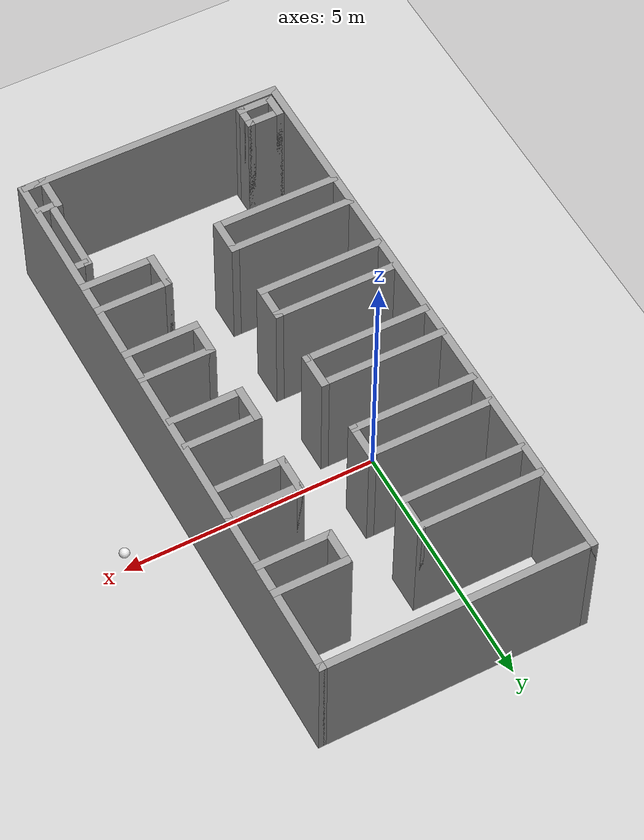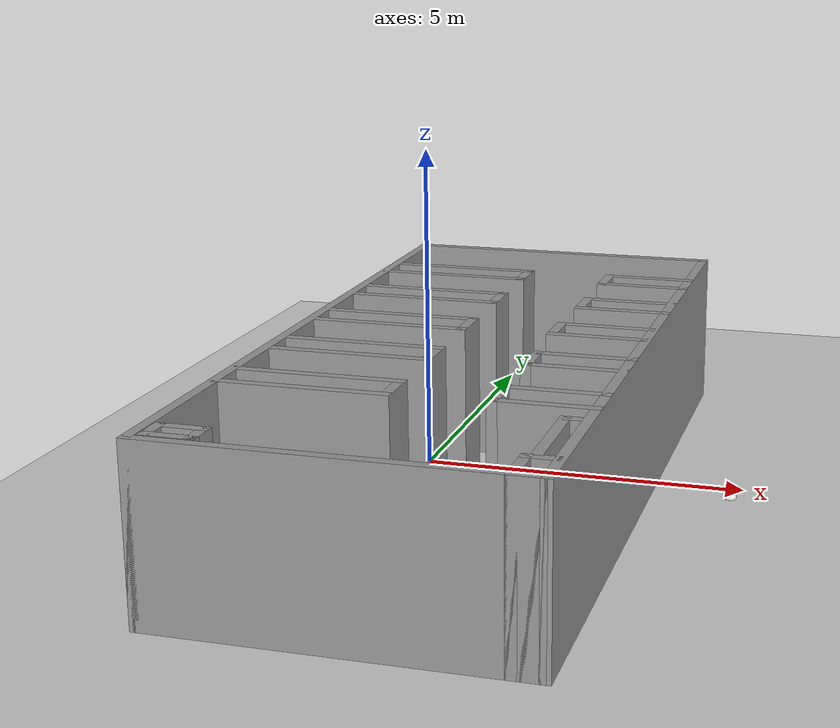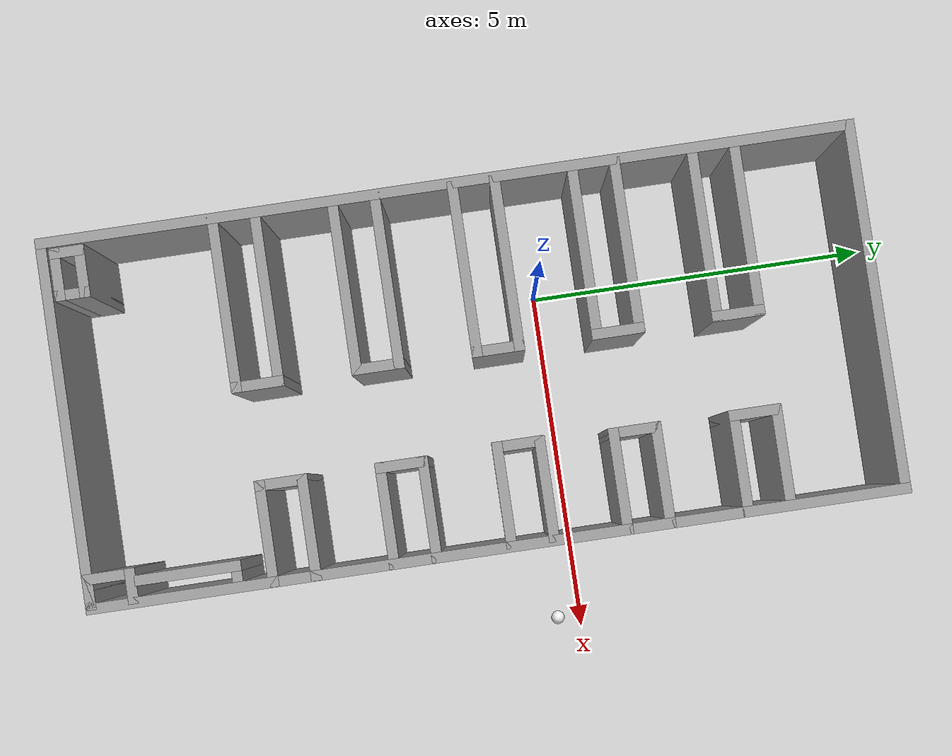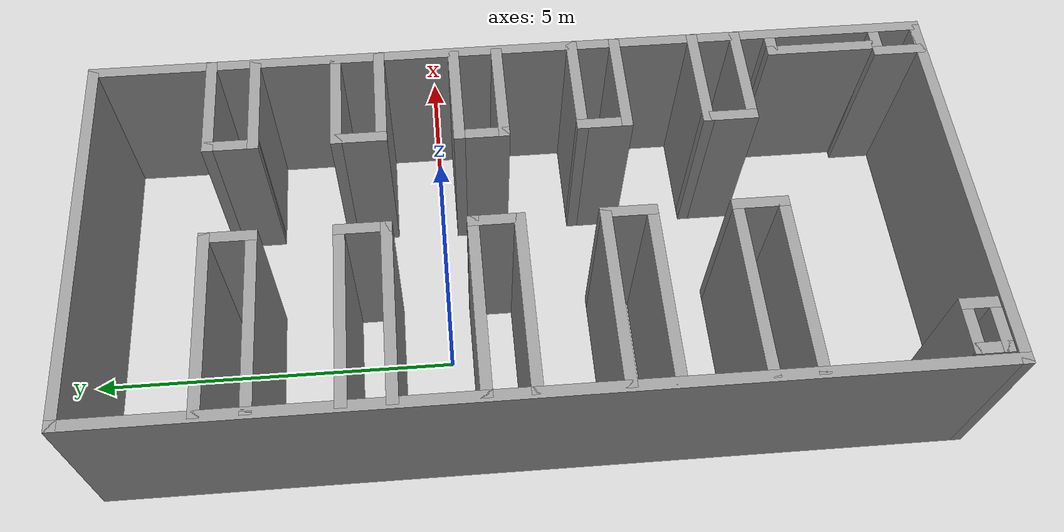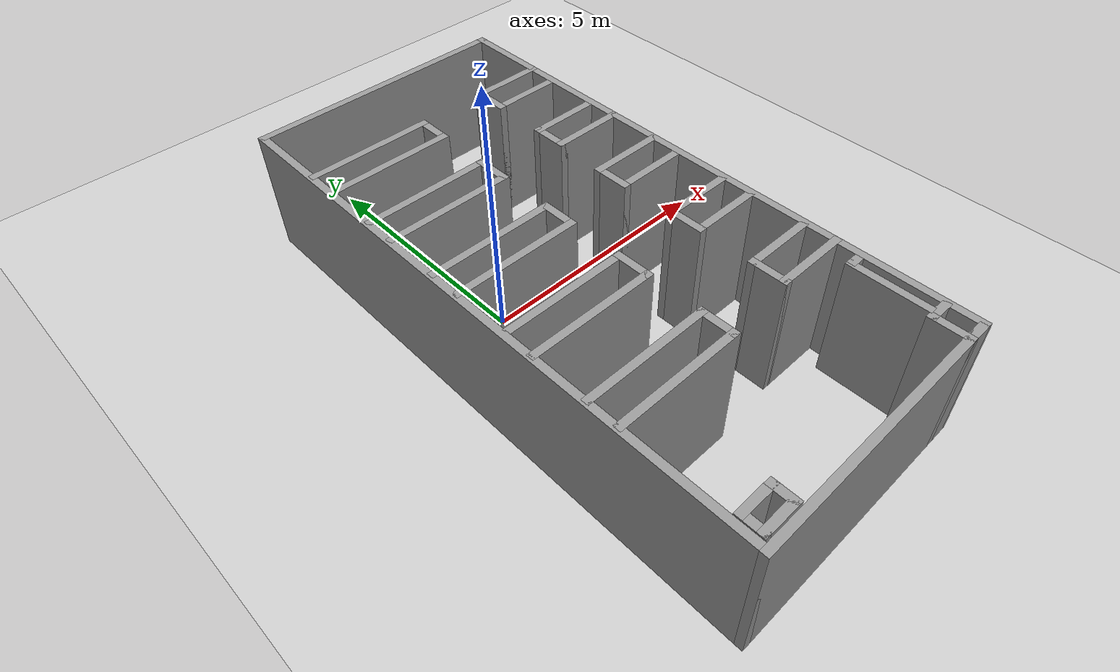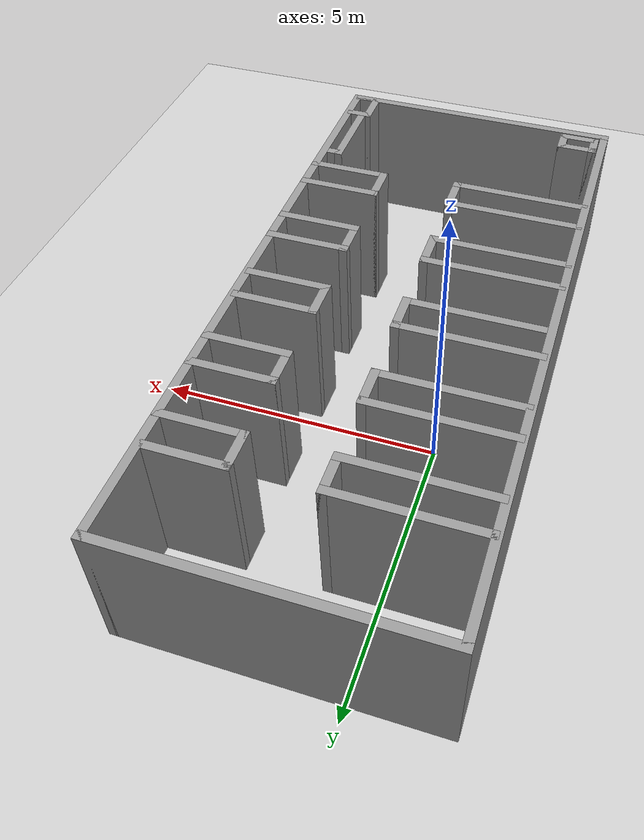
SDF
<sdf version="1.6">
 <world name="default">
  <light name="sun" type="directional">
   <pose>0 0 10 0 -0 0</pose>
   <diffuse>0.8 0.8 0.8 1</diffuse>
   <specular>0.2 0.2 0.2 1</specular>
   <attenuation>
    <range>1000</range>
    <constant>0.9</constant>
    <linear>0.01</linear>
    <quadratic>0.001</quadratic>
   </attenuation>
   <direction>-0.5 0.1 -0.9</direction>
  </light>
  <model name="ground_plane">
   <static>1</static>
   <link name="link">
    <collision name="collision">
     <geometry><plane><normal>0 0 1</normal><size>100 100</size></plane></geometry>
     <surface><friction><ode><mu>100</mu><mu2>50</mu2></ode></friction></surface>
    </collision>
    <visual name="visual">
     <cast_shadows>0</cast_shadows>
     <geometry><plane><normal>0 0 1</normal><size>100 100</size></plane></geometry>
     <material>
      <script><uri>file://media/materials/scripts/gazebo.material</uri><name>Gazebo/Grey</name></script>
     </material>
    </visual>
   </link>
  </model>
  <gravity>0 0 -9.8</gravity>
  <magnetic_field>6e-06 2.3e-05 -4.2e-05</magnetic_field>
  <atmosphere type="adiabatic"/>
  <physics name="default_physics" default="0" type="ode">
   <max_step_size>0.001</max_step_size>
   <real_time_factor>1</real_time_factor>
   <real_time_update_rate>1000</real_time_update_rate>
  </physics>
  <scene><ambient>0.4 0.4 0.4 1</ambient><background>0.7 0.7 0.7 1</background><shadows>1</shadows></scene>
  <audio><device>default</device></audio>
  <spherical_coordinates>
   <surface_model>EARTH_WGS84</surface_model>
   <latitude_deg>0</latitude_deg>
   <longitude_deg>0</longitude_deg>
   <elevation>0</elevation>
   <heading_deg>0</heading_deg>
  </spherical_coordinates>
  <model name="my_ball">
   <link name="link_0">
    <inertial>
     <mass>1</mass>
     <inertia><ixx>0.1</ixx><ixy>0</ixy><ixz>0</ixz><iyy>0.1</iyy><iyz>0</iyz><izz>0.1</izz></inertia>
    </inertial>
    <visual name="visual">
     <geometry><sphere><radius>0.1</radius></sphere></geometry>
     <material>
      <lighting>1</lighting>
      <script><uri>file://media/materials/scripts/gazebo.material</uri><name>Gazebo/White</name></script>
      <shader type="pixel"><normal_map>__default__</normal_map></shader>
      <ambient>1 1 1 1</ambient>
      <diffuse>1 1 1 1</diffuse>
      <specular>1 1 1 1</specular>
      <emissive>1 1 1 1</emissive>
     </material>
    </visual>
    <collision name="collision">
     <geometry><sphere><radius>0.1</radius></sphere></geometry>
     <surface>
      <friction>
       <ode><mu>1</mu><mu2>1</mu2><fdir1>0 0 0</fdir1><slip1>0</slip1><slip2>0</slip2></ode>
       <torsional>
        <coefficient>1</coefficient>
        <patch_radius>0</patch_radius>
        <surface_radius>0</surface_radius>
        <use_patch_radius>1</use_patch_radius>
        <ode><slip>0</slip></ode>
       </torsional>
      </friction>
      <bounce><restitution_coefficient>0</restitution_coefficient><threshold>1e+06</threshold></bounce>
      <contact>
       <collide_without_contact>0</collide_without_contact>
       <collide_without_contact_bitmask>1</collide_without_contact_bitmask>
       <collide_bitmask>1</collide_bitmask>
       <ode>
        <soft_cfm>0</soft_cfm>
        <soft_erp>0.2</soft_erp>
        <kp>1e+13</kp>
        <kd>1</kd>
        <max_vel>0.01</max_vel>
        <min_depth>0</min_depth>
       </ode>
       <bullet>
        <split_impulse>1</split_impulse>
        <split_impulse_penetration_threshold>-0.01</split_impulse_penetration_threshold>
        <soft_cfm>0</soft_cfm>
        <soft_erp>0.2</soft_erp>
        <kp>1e+13</kp>
        <kd>1</kd>
       </bullet>
      </contact>
     </surface>
    </collision>
   </link>
   <static>0</static>
   <pose>4.83519 -0.335584 0 0 -0 0</pose>
  </model>
  <model name="5F">
   <pose>1.02148 -1.06176 0 0 -0 0</pose>
   <link name="Wall_100">
    <collision name="Wall_100_Collision">
     <geometry><box><size>0.75 0.15 2.5</size></box></geometry>
     <pose>0 0 1.25 0 -0 0</pose>
    </collision>
    <visual name="Wall_100_Visual">
     <pose>0 0 1.25 0 -0 0</pose>
     <geometry><box><size>0.75 0.15 2.5</size></box></geometry>
     <material>
      <script><uri>file://media/materials/scripts/gazebo.material</uri><name>Gazebo/Grey</name></script>
      <ambient>1 1 1 1</ambient>
     </material>
     <meta><layer>0</layer></meta>
    </visual>
    <pose>-0.181247 2.0951 0 0 -0 -1.5708</pose>
   </link>
   <link name="Wall_101">
    <collision name="Wall_101_Collision">
     <geometry><box><size>2.5 0.15 2.5</size></box></geometry>
     <pose>0 0 1.25 0 -0 0</pose>
    </collision>
    <visual name="Wall_101_Visual">
     <pose>0 0 1.25 0 -0 0</pose>
     <geometry><box><size>2.5 0.15 2.5</size></box></geometry>
     <material>
      <script><uri>file://media/materials/scripts/gazebo.material</uri><name>Gazebo/Grey</name></script>
      <ambient>1 1 1 1</ambient>
     </material>
     <meta><layer>0</layer></meta>
    </visual>
    <pose>-1.35625 1.7951 0 0 -0 3.14159</pose>
   </link>
   <link name="Wall_104">
    <collision name="Wall_104_Collision">
     <geometry><box><size>2.5 0.15 2.5</size></box></geometry>
     <pose>0 0 1.25 0 -0 0</pose>
    </collision>
    <visual name="Wall_104_Visual">
     <pose>0 0 1.25 0 -0 0</pose>
     <geometry><box><size>2.5 0.15 2.5</size></box></geometry>
     <material>
      <script><uri>file://media/materials/scripts/gazebo.material</uri><name>Gazebo/Grey</name></script>
      <ambient>1 1 1 1</ambient>
     </material>
     <meta><layer>0</layer></meta>
    </visual>
    <pose>-1.35625 0.695096 0 0 -0 3.14159</pose>
   </link>
   <link name="Wall_106">
    <collision name="Wall_106_Collision">
     <geometry><box><size>0.75 0.15 2.5</size></box></geometry>
     <pose>0 0 1.25 0 -0 0</pose>
    </collision>
    <visual name="Wall_106_Visual">
     <pose>0 0 1.25 0 -0 0</pose>
     <geometry><box><size>0.75 0.15 2.5</size></box></geometry>
     <material>
      <script><uri>file://media/materials/scripts/gazebo.material</uri><name>Gazebo/Grey</name></script>
      <ambient>1 1 1 1</ambient>
     </material>
     <meta><layer>0</layer></meta>
    </visual>
    <pose>-0.181247 0.395096 0 0 -0 -1.5708</pose>
   </link>
   <link name="Wall_107">
    <collision name="Wall_107_Collision">
     <geometry><box><size>2.5 0.15 2.5</size></box></geometry>
     <pose>0 0 1.25 0 -0 0</pose>
    </collision>
    <visual name="Wall_107_Visual">
     <pose>0 0 1.25 0 -0 0</pose>
     <geometry><box><size>2.5 0.15 2.5</size></box></geometry>
     <material>
      <script><uri>file://media/materials/scripts/gazebo.material</uri><name>Gazebo/Grey</name></script>
      <ambient>1 1 1 1</ambient>
     </material>
     <meta><layer>0</layer></meta>
    </visual>
    <pose>-1.35625 0.095096 0 0 -0 3.14159</pose>
   </link>
   <link name="Wall_110">
    <collision name="Wall_110_Collision">
     <geometry><box><size>2.5 0.15 2.5</size></box></geometry>
     <pose>0 0 1.25 0 -0 0</pose>
    </collision>
    <visual name="Wall_110_Visual">
     <pose>0 0 1.25 0 -0 0</pose>
     <geometry><box><size>2.5 0.15 2.5</size></box></geometry>
     <material>
      <script><uri>file://media/materials/scripts/gazebo.material</uri><name>Gazebo/Grey</name></script>
      <ambient>1 1 1 1</ambient>
     </material>
     <meta><layer>0</layer></meta>
    </visual>
    <pose>-1.35625 -1.0049 0 0 -0 3.14159</pose>
   </link>
   <link name="Wall_112">
    <collision name="Wall_112_Collision">
     <geometry><box><size>0.75 0.15 2.5</size></box></geometry>
     <pose>0 0 1.25 0 -0 0</pose>
    </collision>
    <visual name="Wall_112_Visual">
     <pose>0 0 1.25 0 -0 0</pose>
     <geometry><box><size>0.75 0.15 2.5</size></box></geometry>
     <material>
      <script><uri>file://media/materials/scripts/gazebo.material</uri><name>Gazebo/Grey</name></script>
      <ambient>1 1 1 1</ambient>
     </material>
     <meta><layer>0</layer></meta>
    </visual>
    <pose>-0.181247 -1.3049 0 0 -0 -1.5708</pose>
   </link>
   <link name="Wall_113">
    <collision name="Wall_113_Collision">
     <geometry><box><size>2.5 0.15 2.5</size></box></geometry>
     <pose>0 0 1.25 0 -0 0</pose>
    </collision>
    <visual name="Wall_113_Visual">
     <pose>0 0 1.25 0 -0 0</pose>
     <geometry><box><size>2.5 0.15 2.5</size></box></geometry>
     <material>
      <script><uri>file://media/materials/scripts/gazebo.material</uri><name>Gazebo/Grey</name></script>
      <ambient>1 1 1 1</ambient>
     </material>
     <meta><layer>0</layer></meta>
    </visual>
    <pose>-1.35625 -1.6049 0 0 -0 3.14159</pose>
   </link>
   <link name="Wall_116">
    <collision name="Wall_116_Collision">
     <geometry><box><size>2.5 0.15 2.5</size></box></geometry>
     <pose>0 0 1.25 0 -0 0</pose>
    </collision>
    <visual name="Wall_116_Visual">
     <pose>0 0 1.25 0 -0 0</pose>
     <geometry><box><size>2.5 0.15 2.5</size></box></geometry>
     <material>
      <script><uri>file://media/materials/scripts/gazebo.material</uri><name>Gazebo/Grey</name></script>
      <ambient>1 1 1 1</ambient>
     </material>
     <meta><layer>0</layer></meta>
    </visual>
    <pose>-1.35625 -2.7049 0 0 -0 3.14159</pose>
   </link>
   <link name="Wall_118">
    <collision name="Wall_118_Collision">
     <geometry><box><size>0.75 0.15 2.5</size></box></geometry>
     <pose>0 0 1.25 0 -0 0</pose>
    </collision>
    <visual name="Wall_118_Visual">
     <pose>0 0 1.25 0 -0 0</pose>
     <geometry><box><size>0.75 0.15 2.5</size></box></geometry>
     <material>
      <script><uri>file://media/materials/scripts/gazebo.material</uri><name>Gazebo/Grey</name></script>
      <ambient>1 1 1 1</ambient>
     </material>
     <meta><layer>0</layer></meta>
    </visual>
    <pose>-0.181247 -3.0049 0 0 -0 -1.5708</pose>
   </link>
   <link name="Wall_119">
    <collision name="Wall_119_Collision">
     <geometry><box><size>2.5 0.15 2.5</size></box></geometry>
     <pose>0 0 1.25 0 -0 0</pose>
    </collision>
    <visual name="Wall_119_Visual">
     <pose>0 0 1.25 0 -0 0</pose>
     <geometry><box><size>2.5 0.15 2.5</size></box></geometry>
     <material>
      <script><uri>file://media/materials/scripts/gazebo.material</uri><name>Gazebo/Grey</name></script>
      <ambient>1 1 1 1</ambient>
     </material>
     <meta><layer>0</layer></meta>
    </visual>
    <pose>-1.35625 -3.3049 0 0 -0 3.14159</pose>
   </link>
   <link name="Wall_122">
    <collision name="Wall_122_Collision">
     <geometry><box><size>1.5 0.15 2.5</size></box></geometry>
     <pose>0 0 1.25 0 -0 0</pose>
    </collision>
    <visual name="Wall_122_Visual">
     <pose>0 0 1.25 0 -0 0</pose>
     <geometry><box><size>1.5 0.15 2.5</size></box></geometry>
     <material>
      <script><uri>file://media/materials/scripts/gazebo.material</uri><name>Gazebo/Grey</name></script>
      <ambient>1 1 1 1</ambient>
     </material>
     <meta><layer>0</layer></meta>
    </visual>
    <pose>1.89975 2.4181 0 0 -0 0</pose>
   </link>
   <link name="Wall_124">
    <collision name="Wall_124_Collision">
     <geometry><box><size>0.75 0.15 2.5</size></box></geometry>
     <pose>0 0 1.25 0 -0 0</pose>
    </collision>
    <visual name="Wall_124_Visual">
     <pose>0 0 1.25 0 -0 0</pose>
     <geometry><box><size>0.75 0.15 2.5</size></box></geometry>
     <material>
      <script><uri>file://media/materials/scripts/gazebo.material</uri><name>Gazebo/Grey</name></script>
      <ambient>1 1 1 1</ambient>
     </material>
     <meta><layer>0</layer></meta>
    </visual>
    <pose>1.22475 2.1181 0 0 -0 -1.5708</pose>
   </link>
   <link name="Wall_125">
    <collision name="Wall_125_Collision">
     <geometry><box><size>1.5 0.15 2.5</size></box></geometry>
     <pose>0 0 1.25 0 -0 0</pose>
    </collision>
    <visual name="Wall_125_Visual">
     <pose>0 0 1.25 0 -0 0</pose>
     <geometry><box><size>1.5 0.15 2.5</size></box></geometry>
     <material>
      <script><uri>file://media/materials/scripts/gazebo.material</uri><name>Gazebo/Grey</name></script>
      <ambient>1 1 1 1</ambient>
     </material>
     <meta><layer>0</layer></meta>
    </visual>
    <pose>1.89975 1.8181 0 0 -0 0</pose>
   </link>
   <link name="Wall_127">
    <collision name="Wall_127_Collision">
     <geometry><box><size>1.5 0.15 2.5</size></box></geometry>
     <pose>0 0 1.25 0 -0 0</pose>
    </collision>
    <visual name="Wall_127_Visual">
     <pose>0 0 1.25 0 -0 0</pose>
     <geometry><box><size>1.5 0.15 2.5</size></box></geometry>
     <material>
      <script><uri>file://media/materials/scripts/gazebo.material</uri><name>Gazebo/Grey</name></script>
      <ambient>1 1 1 1</ambient>
     </material>
     <meta><layer>0</layer></meta>
    </visual>
    <pose>1.85375 0.783096 0 0 -0 3.14159</pose>
   </link>
   <link name="Wall_128">
    <collision name="Wall_128_Collision">
     <geometry><box><size>0.75 0.15 2.5</size></box></geometry>
     <pose>0 0 1.25 0 -0 0</pose>
    </collision>
    <visual name="Wall_128_Visual">
     <pose>0 0 1.25 0 -0 0</pose>
     <geometry><box><size>0.75 0.15 2.5</size></box></geometry>
     <material>
      <script><uri>file://media/materials/scripts/gazebo.material</uri><name>Gazebo/Grey</name></script>
      <ambient>1 1 1 1</ambient>
     </material>
     <meta><layer>0</layer></meta>
    </visual>
    <pose>1.17875 0.483096 0 0 -0 -1.5708</pose>
   </link>
   <link name="Wall_129">
    <collision name="Wall_129_Collision">
     <geometry><box><size>1.5 0.15 2.5</size></box></geometry>
     <pose>0 0 1.25 0 -0 0</pose>
    </collision>
    <visual name="Wall_129_Visual">
     <pose>0 0 1.25 0 -0 0</pose>
     <geometry><box><size>1.5 0.15 2.5</size></box></geometry>
     <material>
      <script><uri>file://media/materials/scripts/gazebo.material</uri><name>Gazebo/Grey</name></script>
      <ambient>1 1 1 1</ambient>
     </material>
     <meta><layer>0</layer></meta>
    </visual>
    <pose>1.85375 0.183096 0 0 -0 0</pose>
   </link>
   <link name="Wall_131">
    <collision name="Wall_131_Collision">
     <geometry><box><size>1.5 0.15 2.5</size></box></geometry>
     <pose>0 0 1.25 0 -0 0</pose>
    </collision>
    <visual name="Wall_131_Visual">
     <pose>0 0 1.25 0 -0 0</pose>
     <geometry><box><size>1.5 0.15 2.5</size></box></geometry>
     <material>
      <script><uri>file://media/materials/scripts/gazebo.material</uri><name>Gazebo/Grey</name></script>
      <ambient>1 1 1 1</ambient>
     </material>
     <meta><layer>0</layer></meta>
    </visual>
    <pose>1.89975 -0.872904 0 0 -0 3.14159</pose>
   </link>
   <link name="Wall_132">
    <collision name="Wall_132_Collision">
     <geometry><box><size>0.75 0.15 2.5</size></box></geometry>
     <pose>0 0 1.25 0 -0 0</pose>
    </collision>
    <visual name="Wall_132_Visual">
     <pose>0 0 1.25 0 -0 0</pose>
     <geometry><box><size>0.75 0.15 2.5</size></box></geometry>
     <material>
      <script><uri>file://media/materials/scripts/gazebo.material</uri><name>Gazebo/Grey</name></script>
      <ambient>1 1 1 1</ambient>
     </material>
     <meta><layer>0</layer></meta>
    </visual>
    <pose>1.22475 -1.1729 0 0 -0 -1.5708</pose>
   </link>
   <link name="Wall_133">
    <collision name="Wall_133_Collision">
     <geometry><box><size>1.5 0.15 2.5</size></box></geometry>
     <pose>0 0 1.25 0 -0 0</pose>
    </collision>
    <visual name="Wall_133_Visual">
     <pose>0 0 1.25 0 -0 0</pose>
     <geometry><box><size>1.5 0.15 2.5</size></box></geometry>
     <material>
      <script><uri>file://media/materials/scripts/gazebo.material</uri><name>Gazebo/Grey</name></script>
      <ambient>1 1 1 1</ambient>
     </material>
     <meta><layer>0</layer></meta>
    </visual>
    <pose>1.89975 -1.4729 0 0 -0 0</pose>
   </link>
   <link name="Wall_136">
    <collision name="Wall_136_Collision">
     <geometry><box><size>1.5 0.15 2.5</size></box></geometry>
     <pose>0 0 1.25 0 -0 0</pose>
    </collision>
    <visual name="Wall_136_Visual">
     <pose>0 0 1.25 0 -0 0</pose>
     <geometry><box><size>1.5 0.15 2.5</size></box></geometry>
     <material>
      <script><uri>file://media/materials/scripts/gazebo.material</uri><name>Gazebo/Grey</name></script>
      <ambient>1 1 1 1</ambient>
     </material>
     <meta><layer>0</layer></meta>
    </visual>
    <pose>1.89975 -2.5729 0 0 -0 0</pose>
   </link>
   <link name="Wall_138">
    <collision name="Wall_138_Collision">
     <geometry><box><size>0.75 0.15 2.5</size></box></geometry>
     <pose>0 0 1.25 0 -0 0</pose>
    </collision>
    <visual name="Wall_138_Visual">
     <pose>0 0 1.25 0 -0 0</pose>
     <geometry><box><size>0.75 0.15 2.5</size></box></geometry>
     <material>
      <script><uri>file://media/materials/scripts/gazebo.material</uri><name>Gazebo/Grey</name></script>
      <ambient>1 1 1 1</ambient>
     </material>
     <meta><layer>0</layer></meta>
    </visual>
    <pose>1.22475 -2.8729 0 0 -0 -1.5708</pose>
   </link>
   <link name="Wall_139">
    <collision name="Wall_139_Collision">
     <geometry><box><size>1.5 0.15 2.5</size></box></geometry>
     <pose>0 0 1.25 0 -0 0</pose>
    </collision>
    <visual name="Wall_139_Visual">
     <pose>0 0 1.25 0 -0 0</pose>
     <geometry><box><size>1.5 0.15 2.5</size></box></geometry>
     <material>
      <script><uri>file://media/materials/scripts/gazebo.material</uri><name>Gazebo/Grey</name></script>
      <ambient>1 1 1 1</ambient>
     </material>
     <meta><layer>0</layer></meta>
    </visual>
    <pose>1.89975 -3.1729 0 0 -0 0</pose>
   </link>
   <link name="Wall_60">
    <collision name="Wall_60_Collision">
     <geometry><box><size>11.62 0.15 2.5</size></box></geometry>
     <pose>0 0 1.25 0 -0 0</pose>
    </collision>
    <visual name="Wall_60_Visual">
     <pose>0 0 1.25 0 -0 0</pose>
     <geometry><box><size>11.62 0.15 2.5</size></box></geometry>
     <material>
      <script><uri>file://media/materials/scripts/gazebo.material</uri><name>Gazebo/Grey</name></script>
      <ambient>1 1 1 1</ambient>
     </material>
     <meta><layer>0</layer></meta>
    </visual>
    <pose>2.58 0 0 0 -0 -1.5708</pose>
   </link>
   <link name="Wall_64">
    <collision name="Wall_64_Collision">
     <geometry><box><size>11.62 0.15 2.5</size></box></geometry>
     <pose>0 0 1.25 0 -0 0</pose>
    </collision>
    <visual name="Wall_64_Visual">
     <pose>0 0 1.25 0 -0 0</pose>
     <geometry><box><size>11.62 0.15 2.5</size></box></geometry>
     <material>
      <script><uri>file://media/materials/scripts/gazebo.material</uri><name>Gazebo/Grey</name></script>
      <ambient>1 1 1 1</ambient>
     </material>
     <meta><layer>0</layer></meta>
    </visual>
    <pose>-2.58 0 0 0 -0 1.5708</pose>
   </link>
   <link name="Wall_66">
    <collision name="Wall_66_Collision">
     <geometry><box><size>5.31 0.15 2.5</size></box></geometry>
     <pose>0 0 1.25 0 -0 0</pose>
    </collision>
    <visual name="Wall_66_Visual">
     <pose>0 0 1.25 0 -0 0</pose>
     <geometry><box><size>5.31 0.15 2.5</size></box></geometry>
     <material>
      <script><uri>file://media/materials/scripts/gazebo.material</uri><name>Gazebo/Grey</name></script>
      <ambient>1 1 1 1</ambient>
     </material>
     <meta><layer>0</layer></meta>
    </visual>
    <pose>0 5.735 0 0 -0 0</pose>
   </link>
   <link name="Wall_68">
    <collision name="Wall_68_Collision">
     <geometry><box><size>0.25 0.15 2.5</size></box></geometry>
     <pose>0 0 1.25 0 -0 0</pose>
    </collision>
    <visual name="Wall_68_Visual">
     <pose>0 0 1.25 0 -0 0</pose>
     <geometry><box><size>0.25 0.15 2.5</size></box></geometry>
     <material>
      <script><uri>file://media/materials/scripts/gazebo.material</uri><name>Gazebo/Grey</name></script>
      <ambient>1 1 1 1</ambient>
     </material>
     <meta><layer>0</layer></meta>
    </visual>
    <pose>2.38166 -3.66005 0 0 -0 0</pose>
   </link>
   <link name="Wall_72">
    <collision name="Wall_72_Collision">
     <geometry><box><size>5.25 0.15 2.5</size></box></geometry>
     <pose>0 0 1.25 0 -0 0</pose>
    </collision>
    <visual name="Wall_72_Visual">
     <pose>0 0 1.25 0 -0 0</pose>
     <geometry><box><size>5.25 0.15 2.5</size></box></geometry>
     <material>
      <script><uri>file://media/materials/scripts/gazebo.material</uri><name>Gazebo/Grey</name></script>
      <ambient>1 1 1 1</ambient>
     </material>
     <meta><layer>0</layer></meta>
    </visual>
    <pose>-0.03 -5.735 0 0 -0 0</pose>
   </link>
   <link name="Wall_73">
    <collision name="Wall_73_Collision">
     <geometry><box><size>0.5 0.15 2.5</size></box></geometry>
     <pose>0 0 1.25 0 -0 0</pose>
    </collision>
    <visual name="Wall_73_Visual">
     <pose>0 0 1.25 0 -0 0</pose>
     <geometry><box><size>0.5 0.15 2.5</size></box></geometry>
     <material>
      <script><uri>file://media/materials/scripts/gazebo.material</uri><name>Gazebo/Grey</name></script>
      <ambient>1 1 1 1</ambient>
     </material>
     <meta><layer>0</layer></meta>
    </visual>
    <pose>2.345 -5.735 0 0 -0 3.14159</pose>
   </link>
   <link name="Wall_74">
    <collision name="Wall_74_Collision">
     <geometry><box><size>0.75 0.15 2.5</size></box></geometry>
     <pose>0 0 1.25 0 -0 0</pose>
    </collision>
    <visual name="Wall_74_Visual">
     <pose>0 0 1.25 0 -0 0</pose>
     <geometry><box><size>0.75 0.15 2.5</size></box></geometry>
     <material>
      <script><uri>file://media/materials/scripts/gazebo.material</uri><name>Gazebo/Grey</name></script>
      <ambient>1 1 1 1</ambient>
     </material>
     <meta><layer>0</layer></meta>
    </visual>
    <pose>2.17 -5.435 0 0 -0 1.5708</pose>
   </link>
   <link name="Wall_75">
    <collision name="Wall_75_Collision">
     <geometry><box><size>0.5 0.15 2.5</size></box></geometry>
     <pose>0 0 1.25 0 -0 0</pose>
    </collision>
    <visual name="Wall_75_Visual">
     <pose>0 0 1.25 0 -0 0</pose>
     <geometry><box><size>0.5 0.15 2.5</size></box></geometry>
     <material>
      <script><uri>file://media/materials/scripts/gazebo.material</uri><name>Gazebo/Grey</name></script>
      <ambient>1 1 1 1</ambient>
     </material>
     <meta><layer>0</layer></meta>
    </visual>
    <pose>2.345 -5.135 0 0 -0 0</pose>
   </link>
   <link name="Wall_77">
    <collision name="Wall_77_Collision">
     <geometry><box><size>1.5 0.15 2.5</size></box></geometry>
     <pose>0 0 1.25 0 -0 0</pose>
    </collision>
    <visual name="Wall_77_Visual">
     <pose>0 0 1.25 0 -0 0</pose>
     <geometry><box><size>1.5 0.15 2.5</size></box></geometry>
     <material>
      <script><uri>file://media/materials/scripts/gazebo.material</uri><name>Gazebo/Grey</name></script>
      <ambient>1 1 1 1</ambient>
     </material>
     <meta><layer>0</layer></meta>
    </visual>
    <pose>2.28131 -4.33492 0 0 -0 -1.5708</pose>
   </link>
   <link name="Wall_80">
    <collision name="Wall_80_Collision">
     <geometry><box><size>0.75 0.15 2.5</size></box></geometry>
     <pose>0 0 1.25 0 -0 0</pose>
    </collision>
    <visual name="Wall_80_Visual">
     <pose>0 0 1.25 0 -0 0</pose>
     <geometry><box><size>0.75 0.15 2.5</size></box></geometry>
     <material>
      <script><uri>file://media/materials/scripts/gazebo.material</uri><name>Gazebo/Grey</name></script>
      <ambient>1 1 1 1</ambient>
     </material>
     <meta><layer>0</layer></meta>
    </visual>
    <pose>-2.11393 -5.56153 0 0 -0 0</pose>
   </link>
   <link name="Wall_82">
    <collision name="Wall_82_Collision">
     <geometry><box><size>0.5 0.15 2.5</size></box></geometry>
     <pose>0 0 1.25 0 -0 0</pose>
    </collision>
    <visual name="Wall_82_Visual">
     <pose>0 0 1.25 0 -0 0</pose>
     <geometry><box><size>0.5 0.15 2.5</size></box></geometry>
     <material>
      <script><uri>file://media/materials/scripts/gazebo.material</uri><name>Gazebo/Grey</name></script>
      <ambient>1 1 1 1</ambient>
     </material>
     <meta><layer>0</layer></meta>
    </visual>
    <pose>-2.41393 -5.38653 0 0 -0 1.5708</pose>
   </link>
   <link name="Wall_83">
    <collision name="Wall_83_Collision">
     <geometry><box><size>0.75 0.15 2.5</size></box></geometry>
     <pose>0 0 1.25 0 -0 0</pose>
    </collision>
    <visual name="Wall_83_Visual">
     <pose>0 0 1.25 0 -0 0</pose>
     <geometry><box><size>0.75 0.15 2.5</size></box></geometry>
     <material>
      <script><uri>file://media/materials/scripts/gazebo.material</uri><name>Gazebo/Grey</name></script>
      <ambient>1 1 1 1</ambient>
     </material>
     <meta><layer>0</layer></meta>
    </visual>
    <pose>-2.11393 -5.21153 0 0 -0 0</pose>
   </link>
   <link name="Wall_84">
    <collision name="Wall_84_Collision">
     <geometry><box><size>0.5 0.15 2.5</size></box></geometry>
     <pose>0 0 1.25 0 -0 0</pose>
    </collision>
    <visual name="Wall_84_Visual">
     <pose>0 0 1.25 0 -0 0</pose>
     <geometry><box><size>0.5 0.15 2.5</size></box></geometry>
     <material>
      <script><uri>file://media/materials/scripts/gazebo.material</uri><name>Gazebo/Grey</name></script>
      <ambient>1 1 1 1</ambient>
     </material>
     <meta><layer>0</layer></meta>
    </visual>
    <pose>-1.81393 -5.38653 0 0 -0 -1.5708</pose>
   </link>
   <link name="Wall_89">
    <collision name="Wall_89_Collision">
     <geometry><box><size>2.5 0.15 2.5</size></box></geometry>
     <pose>0 0 1.25 0 -0 0</pose>
    </collision>
    <visual name="Wall_89_Visual">
     <pose>0 0 1.25 0 -0 0</pose>
     <geometry><box><size>2.5 0.15 2.5</size></box></geometry>
     <material>
      <script><uri>file://media/materials/scripts/gazebo.material</uri><name>Gazebo/Grey</name></script>
      <ambient>1 1 1 1</ambient>
     </material>
     <meta><layer>0</layer></meta>
    </visual>
    <pose>-1.35625 4.0951 0 0 -0 0</pose>
   </link>
   <link name="Wall_90">
    <collision name="Wall_90_Collision">
     <geometry><box><size>0.75 0.15 2.5</size></box></geometry>
     <pose>0 0 1.25 0 -0 0</pose>
    </collision>
    <visual name="Wall_90_Visual">
     <pose>0 0 1.25 0 -0 0</pose>
     <geometry><box><size>0.75 0.15 2.5</size></box></geometry>
     <material>
      <script><uri>file://media/materials/scripts/gazebo.material</uri><name>Gazebo/Grey</name></script>
      <ambient>1 1 1 1</ambient>
     </material>
     <meta><layer>0</layer></meta>
    </visual>
    <pose>-0.181247 3.7951 0 0 -0 -1.5708</pose>
   </link>
   <link name="Wall_91">
    <collision name="Wall_91_Collision">
     <geometry><box><size>2.5 0.15 2.5</size></box></geometry>
     <pose>0 0 1.25 0 -0 0</pose>
    </collision>
    <visual name="Wall_91_Visual">
     <pose>0 0 1.25 0 -0 0</pose>
     <geometry><box><size>2.5 0.15 2.5</size></box></geometry>
     <material>
      <script><uri>file://media/materials/scripts/gazebo.material</uri><name>Gazebo/Grey</name></script>
      <ambient>1 1 1 1</ambient>
     </material>
     <meta><layer>0</layer></meta>
    </visual>
    <pose>-1.35625 3.4951 0 0 -0 3.14159</pose>
   </link>
   <link name="Wall_93">
    <collision name="Wall_93_Collision">
     <geometry><box><size>1.5 0.15 2.5</size></box></geometry>
     <pose>0 0 1.25 0 -0 0</pose>
    </collision>
    <visual name="Wall_93_Visual">
     <pose>0 0 1.25 0 -0 0</pose>
     <geometry><box><size>1.5 0.15 2.5</size></box></geometry>
     <material>
      <script><uri>file://media/materials/scripts/gazebo.material</uri><name>Gazebo/Grey</name></script>
      <ambient>1 1 1 1</ambient>
     </material>
     <meta><layer>0</layer></meta>
    </visual>
    <pose>1.89975 4.1181 0 0 -0 3.14159</pose>
   </link>
   <link name="Wall_94">
    <collision name="Wall_94_Collision">
     <geometry><box><size>0.75 0.15 2.5</size></box></geometry>
     <pose>0 0 1.25 0 -0 0</pose>
    </collision>
    <visual name="Wall_94_Visual">
     <pose>0 0 1.25 0 -0 0</pose>
     <geometry><box><size>0.75 0.15 2.5</size></box></geometry>
     <material>
      <script><uri>file://media/materials/scripts/gazebo.material</uri><name>Gazebo/Grey</name></script>
      <ambient>1 1 1 1</ambient>
     </material>
     <meta><layer>0</layer></meta>
    </visual>
    <pose>1.22475 3.8181 0 0 -0 -1.5708</pose>
   </link>
   <link name="Wall_95">
    <collision name="Wall_95_Collision">
     <geometry><box><size>1.5 0.15 2.5</size></box></geometry>
     <pose>0 0 1.25 0 -0 0</pose>
    </collision>
    <visual name="Wall_95_Visual">
     <pose>0 0 1.25 0 -0 0</pose>
     <geometry><box><size>1.5 0.15 2.5</size></box></geometry>
     <material>
      <script><uri>file://media/materials/scripts/gazebo.material</uri><name>Gazebo/Grey</name></script>
      <ambient>1 1 1 1</ambient>
     </material>
     <meta><layer>0</layer></meta>
    </visual>
    <pose>1.89975 3.5181 0 0 -0 0</pose>
   </link>
   <link name="Wall_98">
    <collision name="Wall_98_Collision">
     <geometry><box><size>2.5 0.15 2.5</size></box></geometry>
     <pose>0 0 1.25 0 -0 0</pose>
    </collision>
    <visual name="Wall_98_Visual">
     <pose>0 0 1.25 0 -0 0</pose>
     <geometry><box><size>2.5 0.15 2.5</size></box></geometry>
     <material>
      <script><uri>file://media/materials/scripts/gazebo.material</uri><name>Gazebo/Grey</name></script>
      <ambient>1 1 1 1</ambient>
     </material>
     <meta><layer>0</layer></meta>
    </visual>
    <pose>-1.35625 2.3951 0 0 -0 3.14159</pose>
   </link>
   <static>1</static>
  </model>
 </world>
</sdf>
